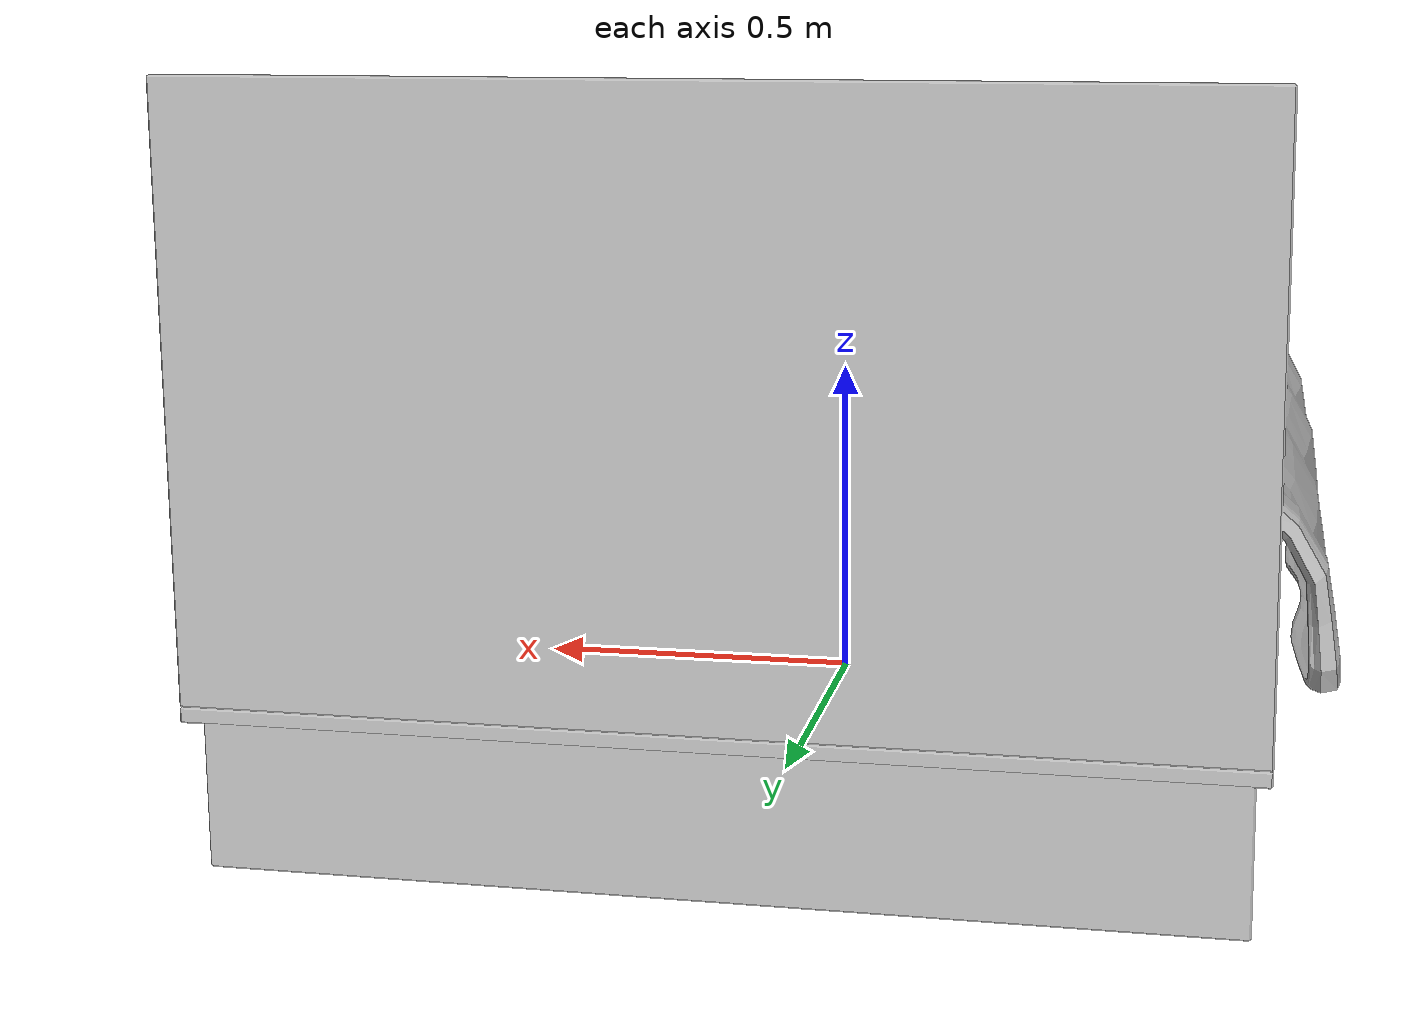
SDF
<?xml version="1.0" ?>
<sdf version="1.6">
  <model name="Bed">
    <link name="link">
      <inertial>
        <mass>22.6</mass>
      </inertial>
      <collision name="collision">
        <geometry>
          <mesh>
            <uri>model://bed/meshes/bed_collision.DAE</uri>
            <scale>0.5 1.0 1.0</scale>
          </mesh>
        </geometry>
      </collision>
      <visual name="visual">
	    <geometry>
          <mesh>
            <uri>model://bed/meshes/bed_visual.DAE</uri>
            <scale>0.75 1.0 0.8</scale>
          </mesh>
        </geometry>
      <meta> <layer> 1 </layer></meta>
</visual>
    </link>
  <static>1</static>
  </model>
</sdf>
